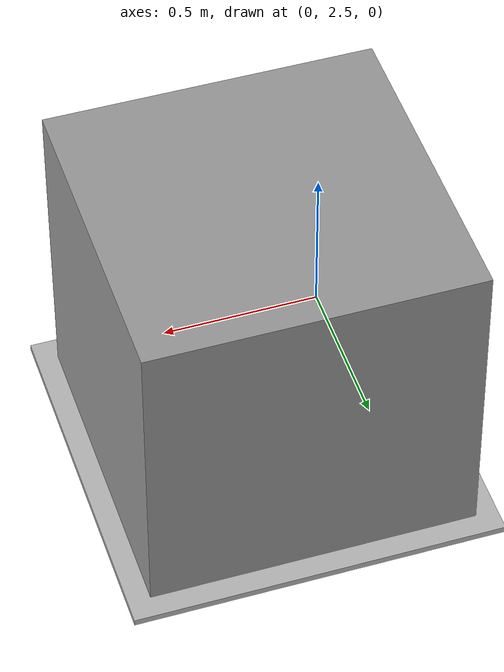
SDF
<sdf version="1.7">
 <world name="default">
  <light name="sun" type="directional">
   <pose>0 0 10 0 -0 0</pose>
   <diffuse>0.8 0.8 0.8 1</diffuse>
   <specular>0.2 0.2 0.2 1</specular>
   <attenuation>
    <range>1000</range>
    <constant>0.9</constant>
    <linear>0.01</linear>
    <quadratic>0.001</quadratic>
   </attenuation>
   <direction>-0.5 0.1 -0.9</direction>
   <spot><inner_angle>0</inner_angle><outer_angle>0</outer_angle><falloff>0</falloff></spot>
  </light>
  <model name="ground_plane">
   <static>1</static>
   <link name="link">
    <collision name="collision">
     <geometry><plane><normal>0 0 1</normal><size>100 100</size></plane></geometry>
     <surface>
      <contact><collide_bitmask>65535</collide_bitmask></contact>
      <friction><ode><mu>100</mu><mu2>50</mu2></ode></friction>
     </surface>
    </collision>
    <visual name="visual">
     <cast_shadows>0</cast_shadows>
     <geometry><plane><normal>0 0 1</normal><size>100 100</size></plane></geometry>
     <material>
      <script><uri>file://media/materials/scripts/gazebo.material</uri><name>Gazebo/Grey</name></script>
     </material>
    </visual>
   </link>
  </model>
  <gravity>0 0 -9.8</gravity>
  <magnetic_field>6e-06 2.3e-05 -4.2e-05</magnetic_field>
  <atmosphere type="adiabatic"/>
  <physics type="ode">
   <max_step_size>0.001</max_step_size>
   <real_time_factor>1</real_time_factor>
   <real_time_update_rate>1000</real_time_update_rate>
  </physics>
  <scene><ambient>0.4 0.4 0.4 1</ambient><background>0.7 0.7 0.7 1</background><shadows>1</shadows></scene>
  <audio><device>default</device></audio>
  <spherical_coordinates>
   <surface_model>EARTH_WGS84</surface_model>
   <latitude_deg>0</latitude_deg>
   <longitude_deg>0</longitude_deg>
   <elevation>0</elevation>
   <heading_deg>0</heading_deg>
  </spherical_coordinates>
  <model name="unit_box">
   <pose>0.342242 3.00244 0.5 0 -0 0</pose>
   <link name="link">
    <inertial>
     <mass>1</mass>
     <inertia>
      <ixx>0.166667</ixx>
      <ixy>0</ixy>
      <ixz>0</ixz>
      <iyy>0.166667</iyy>
      <iyz>0</iyz>
      <izz>0.166667</izz>
     </inertia>
    </inertial>
    <collision name="collision"><geometry><box><size>1 1 1</size></box></geometry></collision>
    <visual name="visual">
     <geometry><box><size>1 1 1</size></box></geometry>
     <material>
      <script><name>Gazebo/Grey</name><uri>file://media/materials/scripts/gazebo.material</uri></script>
     </material>
    </visual>
   </link>
  </model>
  <include><uri>model://my_ground_plane</uri></include>
 </world>
</sdf>

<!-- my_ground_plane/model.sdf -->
<sdf version="1.7">
<model name="my_ground_plane">
  <static>true</static>
    <link name="link">
      <collision name="collision">
        <geometry>
          <plane>
            <normal>0 0 1</normal>
            <size>20 20</size>
          </plane>
        </geometry>
        <surface>
          <friction>
            <ode>
              <mu>100</mu>
              <mu2>50</mu2>
            </ode>
          </friction>
        </surface>
      </collision>
      <visual name="visual">
        <cast_shadows>false</cast_shadows>
        <geometry>
          <plane>
            <normal>0 0 1</normal>
            <size>20 20</size>
          </plane>
        </geometry>
        <material>
          <script>
            <uri>model://my_ground_plane/materials/scripts</uri>
            <uri>model://my_ground_plane/materials/textures/</uri>
            <name>MyGroundPlane/Image</name>
          </script>
        </material>
      </visual>
    </link>
  </model>
</sdf>
